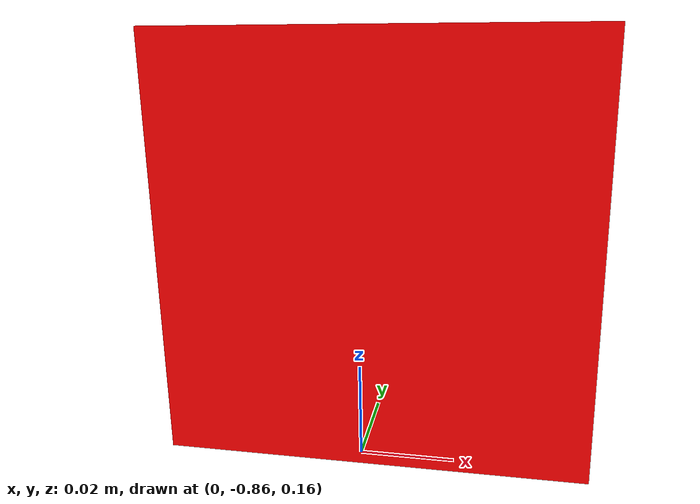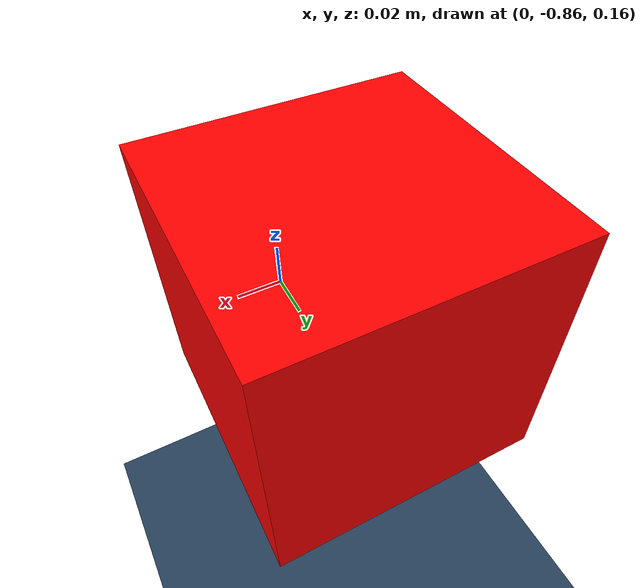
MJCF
<mujoco model="ur10_tracking_scene">

  <compiler meshdir="assets" conflict="merge"/>

  <option integrator="implicitfast"/>

  <!-- Assets -->
  <asset>
    <texture type="skybox" builtin="gradient" rgb1="0.3 0.5 0.7" rgb2="0 0 0"
        width="512" height="3072"/>
    <texture type="2d" name="groundplane" builtin="checker" mark="edge"
        rgb1="0.2 0.3 0.4" rgb2="0.1 0.2 0.3" markrgb="0.8 0.8 0.8" width="300" height="300"/>
    <material name="groundplane" texture="groundplane" texuniform="true"
        texrepeat="5 5" reflectance="0.2"/>
  </asset>

  <!-- Floor and light -->
  <worldbody>
    <light pos="0 0 1.5" dir="0 0 -1" directional="true"/>
    <geom name="floor" size="0 0 0.05" type="plane" material="groundplane"  friction="0.001 0.005 0.001"/>
  </worldbody>

  <!-- Cube to track -->
  <worldbody>
    <body name="red_cube" pos="0 -0.8 0.2">
      <geom type="box" size="0.05 0.05 0.05" rgba="1 0 0 1" friction="0.001 0.005 0.001"/>
      <joint name="red_cube_joint" type="free"/>
    </body>
  </worldbody>

  <!-- Actuator -->
  <actuator>
    <velocity name="red_cube_vel" joint="red_cube_joint" ctrlrange="-20 20"/>
  </actuator>

</mujoco>
